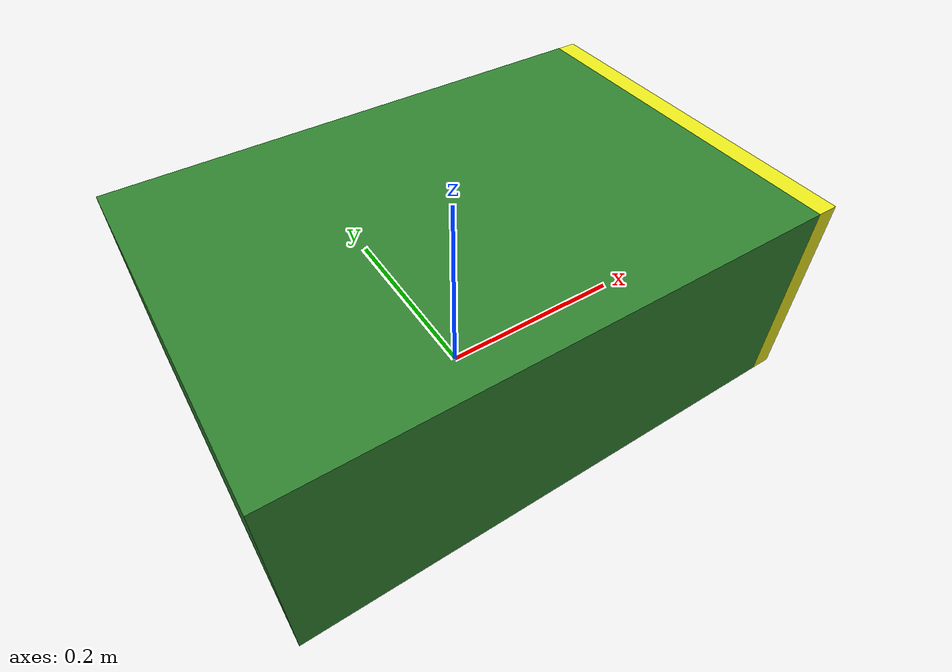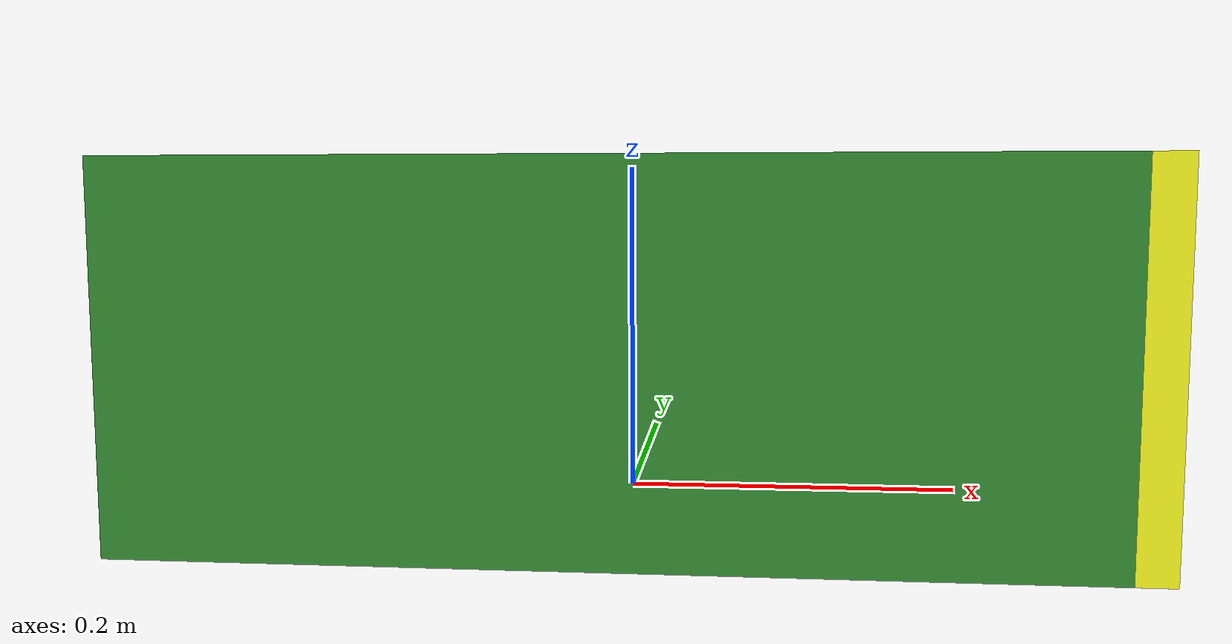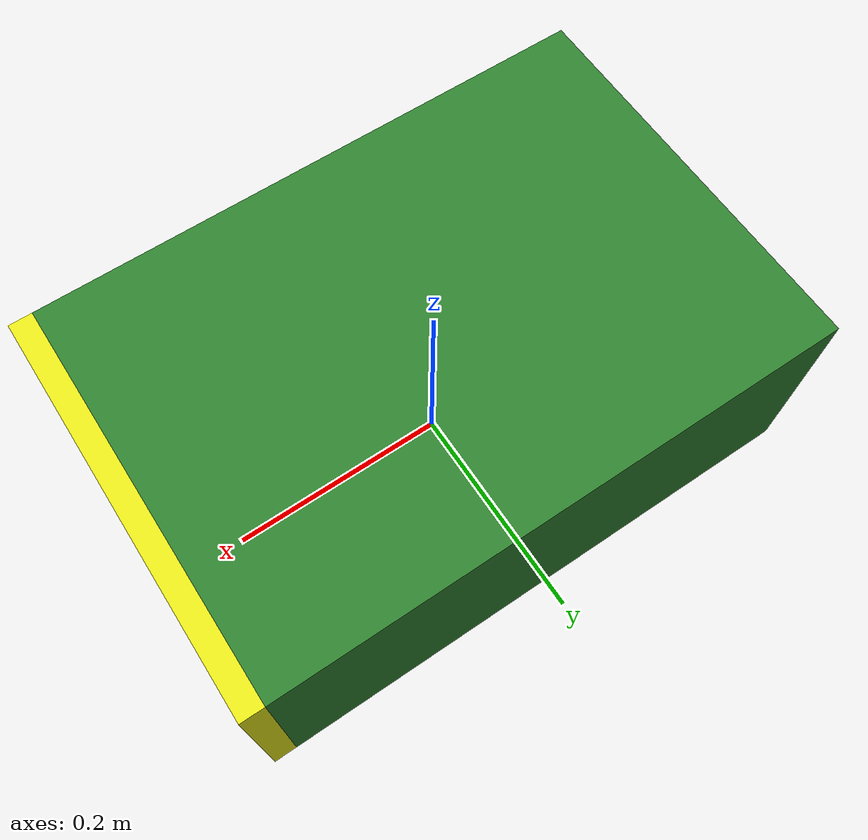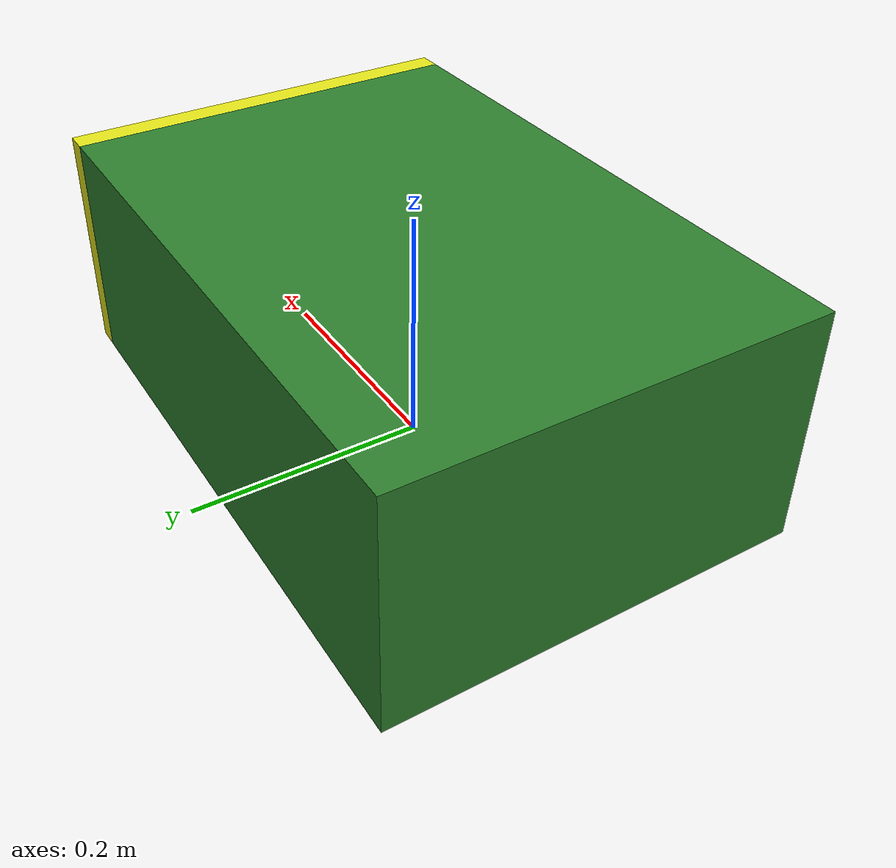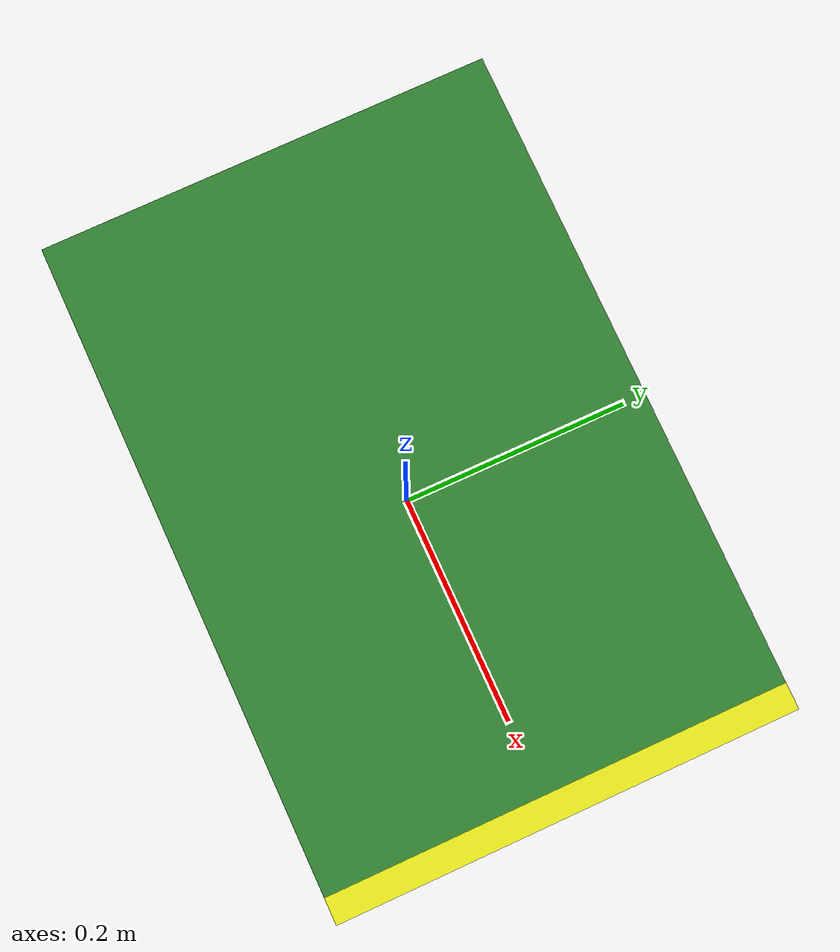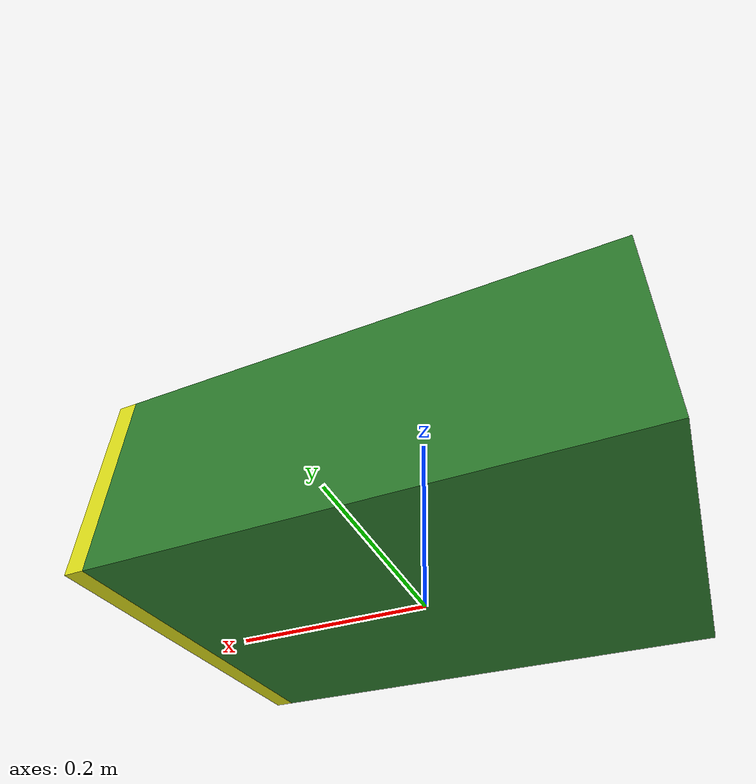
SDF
<?xml version="1.0" ?>
<sdf version="1.9">
  <model name="ugv_1">
    <pose>0 0 0.1 0 0 0</pose>

    <link name="base_link">
      <inertial>
        <mass>8.0</mass>
        <inertia>
          <ixx>0.25</ixx><ixy>0</ixy><ixz>0</ixz>
          <iyy>0.35</iyy><iyz>0</iyz>
          <izz>0.45</izz>
        </inertia>
      </inertial>

      <collision name="base_collision">
        <geometry><box><size>0.5 0.35 0.2</size></box></geometry>
        <surface>
          <friction>
            <ode><mu>0.0</mu><mu2>0.0</mu2></ode>
          </friction>
        </surface>
      </collision>

      <visual name="base_visual">
        <geometry><box><size>0.5 0.35 0.2</size></box></geometry>
        <material>
          <ambient>0.15 0.45 0.15 1</ambient>
          <diffuse>0.18 0.50 0.18 1</diffuse>
          <specular>0.1 0.1 0.1 1</specular>
        </material>
      </visual>

      <!-- Direction indicator: small box on the front face -->
      <visual name="front_marker">
        <pose>0.26 0 0 0 0 0</pose>
        <geometry><box><size>0.02 0.35 0.2</size></box></geometry>
        <material>
          <ambient>0.8 0.8 0.1 1</ambient>
          <diffuse>0.9 0.9 0.1 1</diffuse>
        </material>
      </visual>
    </link>

    <!-- VelocityControl applies cmd_vel directly to the body — no wheel physics -->
    <plugin filename="gz-sim-velocity-control-system"
            name="gz::sim::systems::VelocityControl">
      <topic>/model/ugv_1/cmd_vel</topic>
    </plugin>

    <!-- OdometryPublisher reports the model's actual simulated pose, not wheel encoders -->
    <plugin filename="gz-sim-odometry-publisher-system"
            name="gz::sim::systems::OdometryPublisher">
      <odom_topic>/model/ugv_1/odometry</odom_topic>
      <odom_frame>odom</odom_frame>
      <robot_base_frame>base_link</robot_base_frame>
      <odom_publish_frequency>50</odom_publish_frequency>
    </plugin>
  </model>
</sdf>
